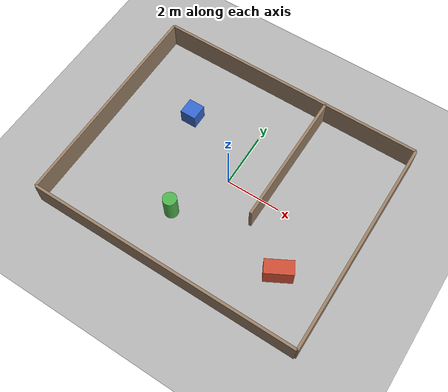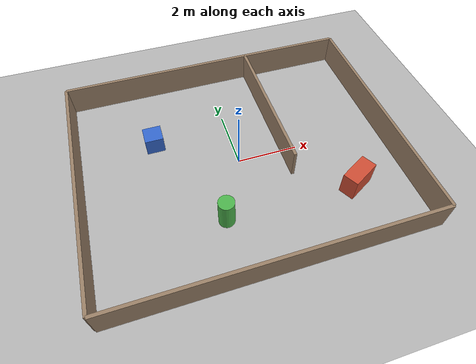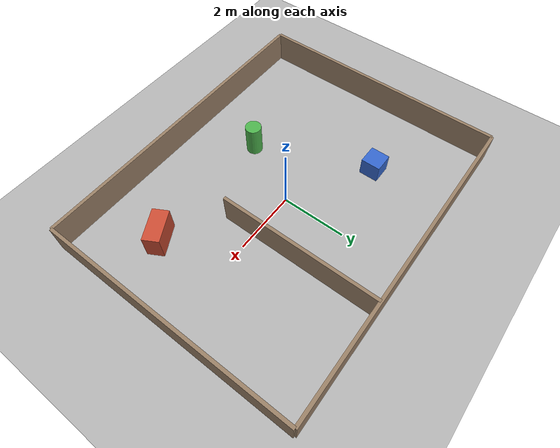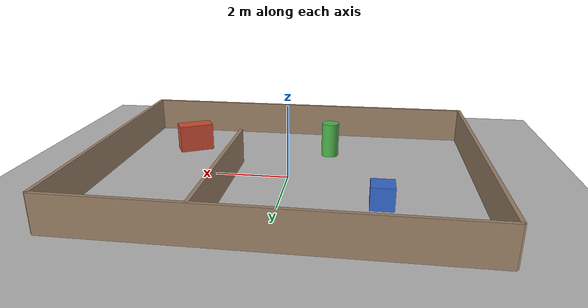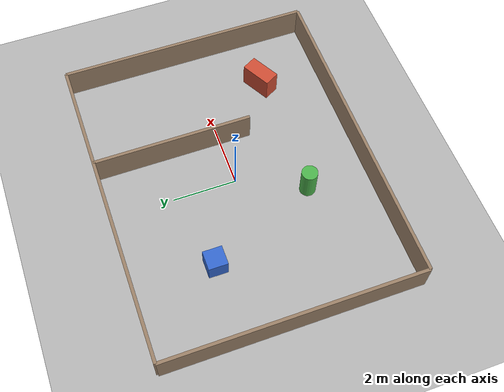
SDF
<?xml version="1.0"?>
<sdf version="1.6">
  <world name="default">

    <light type="directional" name="sun">
      <cast_shadows>true</cast_shadows>
      <pose>0 0 10 0 0 0</pose>
      <diffuse>0.8 0.8 0.8 1</diffuse>
      <specular>0.2 0.2 0.2 1</specular>
      <direction>-0.5 0.1 -0.9</direction>
    </light>

    <model name="ground_plane">
      <static>true</static>
      <link name="link">
        <collision name="collision">
          <geometry><plane><normal>0 0 1</normal><size>100 100</size></plane></geometry>
          <surface><friction><ode><mu>1.0</mu><mu2>1.0</mu2></ode></friction></surface>
        </collision>
        <visual name="visual">
          <cast_shadows>false</cast_shadows>
          <geometry><plane><normal>0 0 1</normal><size>100 100</size></plane></geometry>
          <material><ambient>0.7 0.7 0.7 1</ambient><diffuse>0.7 0.7 0.7 1</diffuse></material>
        </visual>
      </link>
    </model>

    <!-- 10 m x 8 m room: 4 walls -->
    <model name="room">
      <static>true</static>
      <link name="walls">
        <collision name="north"><pose>0 4 0.5 0 0 0</pose><geometry><box><size>10 0.1 1</size></box></geometry></collision>
        <visual name="north_v"><pose>0 4 0.5 0 0 0</pose><geometry><box><size>10 0.1 1</size></box></geometry>
          <material><ambient>0.6 0.5 0.4 1</ambient><diffuse>0.6 0.5 0.4 1</diffuse></material></visual>
        <collision name="south"><pose>0 -4 0.5 0 0 0</pose><geometry><box><size>10 0.1 1</size></box></geometry></collision>
        <visual name="south_v"><pose>0 -4 0.5 0 0 0</pose><geometry><box><size>10 0.1 1</size></box></geometry>
          <material><ambient>0.6 0.5 0.4 1</ambient><diffuse>0.6 0.5 0.4 1</diffuse></material></visual>
        <collision name="east"><pose>5 0 0.5 0 0 0</pose><geometry><box><size>0.1 8 1</size></box></geometry></collision>
        <visual name="east_v"><pose>5 0 0.5 0 0 0</pose><geometry><box><size>0.1 8 1</size></box></geometry>
          <material><ambient>0.6 0.5 0.4 1</ambient><diffuse>0.6 0.5 0.4 1</diffuse></material></visual>
        <collision name="west"><pose>-5 0 0.5 0 0 0</pose><geometry><box><size>0.1 8 1</size></box></geometry></collision>
        <visual name="west_v"><pose>-5 0 0.5 0 0 0</pose><geometry><box><size>0.1 8 1</size></box></geometry>
          <material><ambient>0.6 0.5 0.4 1</ambient><diffuse>0.6 0.5 0.4 1</diffuse></material></visual>
        <!-- inner wall with a gap -->
        <collision name="inner"><pose>1.5 1.5 0.5 0 0 0</pose><geometry><box><size>0.1 5 1</size></box></geometry></collision>
        <visual name="inner_v"><pose>1.5 1.5 0.5 0 0 0</pose><geometry><box><size>0.1 5 1</size></box></geometry>
          <material><ambient>0.6 0.5 0.4 1</ambient><diffuse>0.6 0.5 0.4 1</diffuse></material></visual>
      </link>
    </model>

    <!-- obstacles -->
    <model name="box1"><static>true</static><pose>-2.5 1.5 0.3 0 0 0</pose>
      <link name="l"><collision name="c"><geometry><box><size>0.6 0.6 0.6</size></box></geometry></collision>
      <visual name="v"><geometry><box><size>0.6 0.6 0.6</size></box></geometry>
        <material><ambient>0.2 0.4 0.8 1</ambient><diffuse>0.2 0.4 0.8 1</diffuse></material></visual></link></model>

    <model name="box2"><static>true</static><pose>3.2 -2 0.4 0 0 0.5</pose>
      <link name="l"><collision name="c"><geometry><box><size>1.0 0.5 0.8</size></box></geometry></collision>
      <visual name="v"><geometry><box><size>1.0 0.5 0.8</size></box></geometry>
        <material><ambient>0.8 0.3 0.2 1</ambient><diffuse>0.8 0.3 0.2 1</diffuse></material></visual></link></model>

    <model name="pillar"><static>true</static><pose>-1 -2 0.5 0 0 0</pose>
      <link name="l"><collision name="c"><geometry><cylinder><radius>0.25</radius><length>1</length></cylinder></geometry></collision>
      <visual name="v"><geometry><cylinder><radius>0.25</radius><length>1</length></cylinder></geometry>
        <material><ambient>0.3 0.7 0.3 1</ambient><diffuse>0.3 0.7 0.3 1</diffuse></material></visual></link></model>

  </world>
</sdf>
